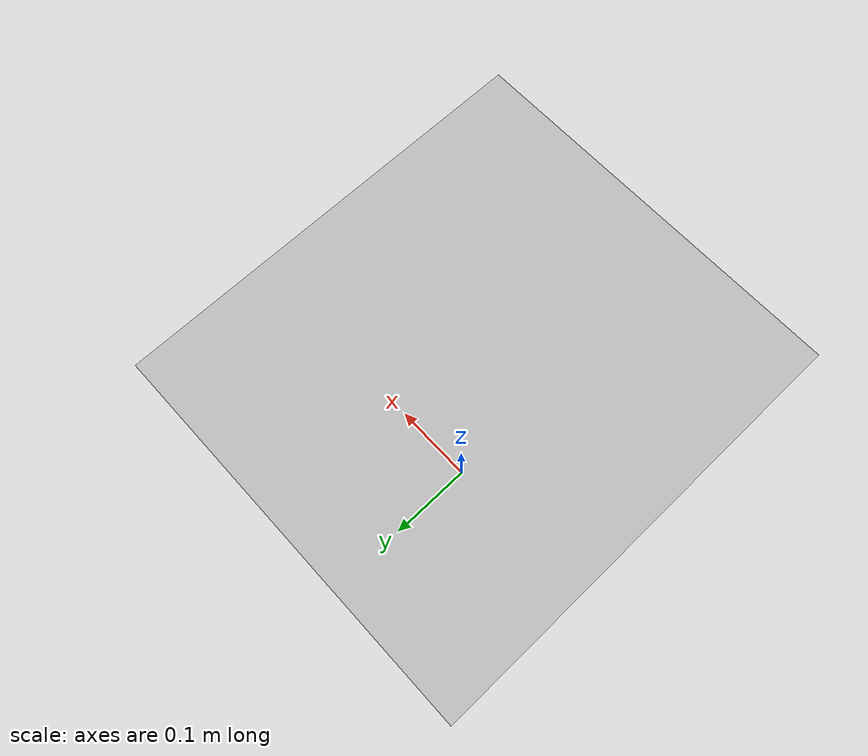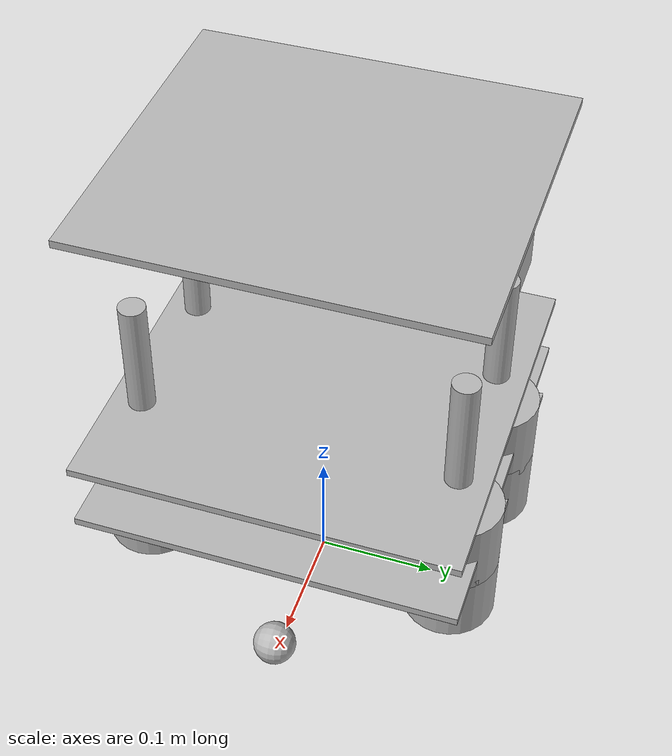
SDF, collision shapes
<?xml version='1.0'?>
<sdf version='1.6'>
  <model name='turtlebot'>
    <model name='turtlebot'>
      <link name='rack'>
        <inertial>
          <pose frame=''>0.001453 -0.000453 0.029787 0 -0 0</pose>
          <inertia>
            <ixx>0.05864</ixx>
            <ixy>0.000124</ixy>
            <ixz>0.000615</ixz>
            <iyy>0.058786</iyy>
            <iyz>1.4e-05</iyz>
            <izz>1.53244</izz>
          </inertia>
          <mass>2.234</mass>
        </inertial>
        <collision name='plate_0_collision'>
          <pose frame=''>-0.04334 0 0.084757 0 -0 0</pose>
          <geometry>
            <box>
              <size>0.233502 0.314845 0.006401</size>
            </box>
          </geometry>
        </collision>
        <visual name='plate_0_visual'>
          <pose frame=''>-0.04334 0 0.084757 0 -0 0</pose>
          <geometry>
            <mesh>
              <uri>model://turtlebot/meshes/plate_0_logo.dae</uri>
            </mesh>
          </geometry>
        </visual>
        <collision name='plate_1_collision'>
          <pose frame=''>-0.00266 0 0.141907 0 -0 0</pose>
          <geometry>
            <box>
              <size>0.314856 0.314856 0.006401</size>
            </box>
          </geometry>
        </collision>
        <visual name='plate_1_visual'>
          <pose frame=''>-0.00266 0 0.141907 0 -0 0</pose>
          <geometry>
            <mesh>
              <uri>model://turtlebot/meshes/plate_1_logo.dae</uri>
            </mesh>
          </geometry>
        </visual>
        <collision name='plate_2_collision'>
          <pose frame=''>-0.00266 0 0.199108 0 -0 0</pose>
          <geometry>
            <box>
              <size>0.314856 0.314856 0.006401</size>
            </box>
          </geometry>
        </collision>
        <visual name='plate_2_visual'>
          <pose frame=''>-0.00266 0 0.199108 0 -0 0</pose>
          <geometry>
            <mesh>
              <uri>model://turtlebot/meshes/plate_1_logo.dae</uri>
            </mesh>
          </geometry>
        </visual>
        <collision name='plate_3_collision'>
          <pose frame=''>-0.01582 0 0.405457 0 -0 0</pose>
          <geometry>
            <box>
              <size>0.288 0.315 0.006401</size>
            </box>
          </geometry>
        </collision>
        <visual name='plate_3_visual'>
          <pose frame=''>-0.01582 0 0.405457 0 -0 0</pose>
          <geometry>
            <mesh>
              <uri>model://turtlebot/meshes/plate_2_logo.dae</uri>
            </mesh>
          </geometry>
        </visual>
        <collision name='spacer_0_collision'>
          <pose frame=''>-0.00254 0.111468 0.079992 0 -0 0</pose>
          <geometry>
            <cylinder>
              <radius>0.0127</radius>
              <length>0.003175</length>
            </cylinder>
          </geometry>
        </collision>
        <visual name='spacer_0_visual'>
          <pose frame=''>-0.00254 0.111468 0.079992 0 -0 0</pose>
          <geometry>
            <mesh>
              <uri>model://turtlebot/meshes/68-02403-125_Spacer.dae</uri>
            </mesh>
          </geometry>
        </visual>
        <collision name='spacer_1_collision'>
          <pose frame=''>-0.00254 -0.111468 0.079992 0 -0 0</pose>
          <geometry>
            <cylinder>
              <radius>0.0127</radius>
              <length>0.003175</length>
            </cylinder>
          </geometry>
        </collision>
        <visual name='spacer_1_visual'>
          <pose frame=''>-0.00254 -0.111468 0.079992 0 -0 0</pose>
          <geometry>
            <mesh>
              <uri>model://turtlebot/meshes/68-02403-125_Spacer.dae</uri>
            </mesh>
          </geometry>
        </visual>
        <collision name='spacer_2_collision'>
          <pose frame=''>-0.07239 -0.111468 0.079992 0 -0 0</pose>
          <geometry>
            <cylinder>
              <radius>0.0127</radius>
              <length>0.003175</length>
            </cylinder>
          </geometry>
        </collision>
        <visual name='spacer_2_visual'>
          <pose frame=''>-0.07239 -0.111468 0.079992 0 -0 0</pose>
          <geometry>
            <mesh>
              <uri>model://turtlebot/meshes/68-02403-125_Spacer.dae</uri>
            </mesh>
          </geometry>
        </visual>
        <collision name='spacer_3_collision'>
          <pose frame=''>-0.07239 0.111468 0.079992 0 -0 0</pose>
          <geometry>
            <cylinder>
              <radius>0.0127</radius>
              <length>0.003175</length>
            </cylinder>
          </geometry>
        </collision>
        <visual name='spacer_3_visual'>
          <pose frame=''>-0.07239 0.111468 0.079992 0 -0 0</pose>
          <geometry>
            <mesh>
              <uri>model://turtlebot/meshes/68-02403-125_Spacer.dae</uri>
            </mesh>
          </geometry>
        </visual>
        <collision name='standoff_2in_0_collision'>
          <pose frame=''>0.06764 0.13142 0.08798 0 -0 0</pose>
          <geometry>
            <cylinder>
              <radius>0.0381</radius>
              <length>0.0635</length>
            </cylinder>
          </geometry>
        </collision>
        <visual name='standoff_2in_0_visual'>
          <pose frame=''>0.06764 0.13142 0.08798 0 -0 0</pose>
          <geometry>
            <mesh>
              <uri>model://turtlebot/meshes/68-04552-2000-RA_Turtlebot_M-F_Standoff.dae</uri>
            </mesh>
          </geometry>
        </visual>
        <collision name='standoff_2in_1_collision'>
          <pose frame=''>0.06764 -0.13142 0.08798 0 -0 0</pose>
          <geometry>
            <cylinder>
              <radius>0.0381</radius>
              <length>0.0635</length>
            </cylinder>
          </geometry>
        </collision>
        <visual name='standoff_2in_1_visual'>
          <pose frame=''>0.06764 -0.13142 0.08798 0 -0 0</pose>
          <geometry>
            <mesh>
              <uri>model://turtlebot/meshes/68-04552-2000-RA_Turtlebot_M-F_Standoff.dae</uri>
            </mesh>
          </geometry>
        </visual>
        <collision name='standoff_2in_2_collision'>
          <pose frame=''>-0.052832 -0.13142 0.08798 0 -0 0</pose>
          <geometry>
            <cylinder>
              <radius>0.0381</radius>
              <length>0.0635</length>
            </cylinder>
          </geometry>
        </collision>
        <visual name='standoff_2in_2_visual'>
          <pose frame=''>-0.052832 -0.13142 0.08798 0 -0 0</pose>
          <geometry>
            <mesh>
              <uri>model://turtlebot/meshes/68-04552-2000-RA_Turtlebot_M-F_Standoff.dae</uri>
            </mesh>
          </geometry>
        </visual>
        <collision name='standoff_2in_3_collision'>
          <pose frame=''>-0.052832 0.13142 0.08798 0 -0 0</pose>
          <geometry>
            <cylinder>
              <radius>0.0381</radius>
              <length>0.0635</length>
            </cylinder>
          </geometry>
        </collision>
        <visual name='standoff_2in_3_visual'>
          <pose frame=''>-0.052832 0.13142 0.08798 0 -0 0</pose>
          <geometry>
            <mesh>
              <uri>model://turtlebot/meshes/68-04552-2000-RA_Turtlebot_M-F_Standoff.dae</uri>
            </mesh>
          </geometry>
        </visual>
        <collision name='standoff_2in_4_collision'>
          <pose frame=''>0.06764 0.13142 0.14513 0 -0 0</pose>
          <geometry>
            <cylinder>
              <radius>0.0381</radius>
              <length>0.0635</length>
            </cylinder>
          </geometry>
        </collision>
        <visual name='standoff_2in_4_visual'>
          <pose frame=''>0.06764 0.13142 0.14513 0 -0 0</pose>
          <geometry>
            <mesh>
              <uri>model://turtlebot/meshes/68-04552-2000-RA_Turtlebot_M-F_Standoff.dae</uri>
            </mesh>
          </geometry>
        </visual>
        <collision name='standoff_2in_5_collision'>
          <pose frame=''>0.06764 -0.13142 0.14513 0 -0 0</pose>
          <geometry>
            <cylinder>
              <radius>0.0381</radius>
              <length>0.0635</length>
            </cylinder>
          </geometry>
        </collision>
        <visual name='standoff_2in_5_visual'>
          <pose frame=''>0.06764 -0.13142 0.14513 0 -0 0</pose>
          <geometry>
            <mesh>
              <uri>model://turtlebot/meshes/68-04552-2000-RA_Turtlebot_M-F_Standoff.dae</uri>
            </mesh>
          </geometry>
        </visual>
        <collision name='standoff_2in_6_collision'>
          <pose frame=''>-0.052832 -0.13142 0.14513 0 -0 0</pose>
          <geometry>
            <cylinder>
              <radius>0.0381</radius>
              <length>0.0635</length>
            </cylinder>
          </geometry>
        </collision>
        <visual name='standoff_2in_6_visual'>
          <pose frame=''>-0.052832 -0.13142 0.14513 0 -0 0</pose>
          <geometry>
            <mesh>
              <uri>model://turtlebot/meshes/68-04552-2000-RA_Turtlebot_M-F_Standoff.dae</uri>
            </mesh>
          </geometry>
        </visual>
        <collision name='standoff_2in_7_collision'>
          <pose frame=''>-0.052832 0.13142 0.14513 0 -0 0</pose>
          <geometry>
            <cylinder>
              <radius>0.0381</radius>
              <length>0.0635</length>
            </cylinder>
          </geometry>
        </collision>
        <visual name='standoff_2in_7_visual'>
          <pose frame=''>-0.052832 0.13142 0.14513 0 -0 0</pose>
          <geometry>
            <mesh>
              <uri>model://turtlebot/meshes/68-04552-2000-RA_Turtlebot_M-F_Standoff.dae</uri>
            </mesh>
          </geometry>
        </visual>
        <collision name='standoff_8in_0_collision'>
          <pose frame=''>0.06764 0.13142 0.20228 0 -0 0</pose>
          <geometry>
            <cylinder>
              <radius>0.011113</radius>
              <length>0.2032</length>
            </cylinder>
          </geometry>
        </collision>
        <visual name='standoff_8in_0_visual'>
          <pose frame=''>0.06764 0.13142 0.20228 0 -0 0</pose>
          <geometry>
            <mesh>
              <uri>model://turtlebot/meshes/68-02421-8000-RA_Turtlebot_F-F_Standoff.dae</uri>
            </mesh>
          </geometry>
        </visual>
        <collision name='standoff_8in_1_collision'>
          <pose frame=''>0.06764 -0.13142 0.20228 0 -0 0</pose>
          <geometry>
            <cylinder>
              <radius>0.011113</radius>
              <length>0.2032</length>
            </cylinder>
          </geometry>
        </collision>
        <visual name='standoff_8in_1_visual'>
          <pose frame=''>0.06764 -0.13142 0.20228 0 -0 0</pose>
          <geometry>
            <mesh>
              <uri>model://turtlebot/meshes/68-02421-8000-RA_Turtlebot_F-F_Standoff.dae</uri>
            </mesh>
          </geometry>
        </visual>
        <collision name='standoff_8in_2_collision'>
          <pose frame=''>-0.052832 -0.13142 0.20228 0 -0 0</pose>
          <geometry>
            <cylinder>
              <radius>0.011113</radius>
              <length>0.2032</length>
            </cylinder>
          </geometry>
        </collision>
        <visual name='standoff_8in_2_visual'>
          <pose frame=''>-0.052832 -0.13142 0.20228 0 -0 0</pose>
          <geometry>
            <mesh>
              <uri>model://turtlebot/meshes/68-02421-8000-RA_Turtlebot_F-F_Standoff.dae</uri>
            </mesh>
          </geometry>
        </visual>
        <collision name='standoff_8in_3_collision'>
          <pose frame=''>-0.052832 0.13142 0.20228 0 -0 0</pose>
          <geometry>
            <cylinder>
              <radius>0.011113</radius>
              <length>0.2032</length>
            </cylinder>
          </geometry>
        </collision>
        <visual name='standoff_8in_3_visual'>
          <pose frame=''>-0.052832 0.13142 0.20228 0 -0 0</pose>
          <geometry>
            <mesh>
              <uri>model://turtlebot/meshes/68-02421-8000-RA_Turtlebot_F-F_Standoff.dae</uri>
            </mesh>
          </geometry>
        </visual>
        <collision name='standoff_kinect_0_collision'>
          <pose frame=''>-0.105098 0.098 0.202308 0 -0 0</pose>
          <geometry>
            <cylinder>
              <radius>0.001111</radius>
              <length>0.008585</length>
            </cylinder>
          </geometry>
        </collision>
        <visual name='standoff_kinect_0_visual'>
          <pose frame=''>-0.105098 0.098 0.202308 0 -0 0</pose>
          <geometry>
            <mesh>
              <uri>model://turtlebot/meshes/68-04556-RA_Kinect_Standoff_Assy.dae</uri>
            </mesh>
          </geometry>
        </visual>
        <collision name='standoff_kinect_1_collision'>
          <pose frame=''>-0.105098 -0.098 0.202308 0 -0 0</pose>
          <geometry>
            <cylinder>
              <radius>0.001111</radius>
              <length>0.008585</length>
            </cylinder>
          </geometry>
        </collision>
        <visual name='standoff_kinect_1_visual'>
          <pose frame=''>-0.105098 -0.098 0.202308 0 -0 0</pose>
          <geometry>
            <mesh>
              <uri>model://turtlebot/meshes/68-04556-RA_Kinect_Standoff_Assy.dae</uri>
            </mesh>
          </geometry>
        </visual>
        <sensor name='laser' type='ray'>
          <pose frame=''>-0.065 0 0.092 0 -0 0</pose>
          <ray>
            <scan>
              <horizontal>
                <samples>180</samples>
                <resolution>1</resolution>
                <min_angle>-2.26893</min_angle>
                <max_angle>2.26893</max_angle>
              </horizontal>
            </scan>
            <range>
              <min>0.08</min>
              <max>10</max>
              <resolution>0.01</resolution>
            </range>
          </ray>
          <update_rate>20</update_rate>
        </sensor>
      </link>
      <link name='create::base'>
        <inertial>
          <pose frame=''>0.001453 -0.000453 0.029787 0 -0 0</pose>
          <inertia>
            <ixx>0.05864</ixx>
            <ixy>0.000124</ixy>
            <ixz>0.000615</ixz>
            <iyy>0.058786</iyy>
            <iyz>1.4e-05</iyz>
            <izz>1.53244</izz>
          </inertia>
          <mass>2.234</mass>
        </inertial>
        <collision name='base_collision'>
          <pose frame=''>0 0 0.0478 0 -0 0</pose>
          <geometry>
            <cylinder>
              <radius>0.016495</radius>
              <length>0.061163</length>
            </cylinder>
          </geometry>
        </collision>
        <visual name='base_visual'>
          <pose frame=''>0 0 0.0478 0 -0 0</pose>
          <geometry>
            <mesh>
              <uri>model://create/meshes/create_body.dae</uri>
            </mesh>
          </geometry>
        </visual>
        <collision name='front_wheel_collision'>
          <pose frame=''>0.13 0 0.017 -0 1.5707 1.5707</pose>
          <geometry>
            <sphere>
              <radius>0.018</radius>
            </sphere>
          </geometry>
          <surface>
            <friction>
              <ode>
                <mu>0</mu>
                <mu2>0</mu2>
                <fdir1>0 0 0</fdir1>
                <slip1>0</slip1>
                <slip2>0</slip2>
              </ode>
            </friction>
          </surface>
        </collision>
        <visual name='front_wheel_visual'>
          <pose frame=''>0.13 0 0.017 -0 1.5707 1.5707</pose>
          <geometry>
            <sphere>
              <radius>0.009</radius>
            </sphere>
          </geometry>
        </visual>
        <collision name='rear_wheel_collision'>
          <pose frame=''>-0.13 0 0.017 -0 1.5707 1.5707</pose>
          <geometry>
            <sphere>
              <radius>0.015</radius>
            </sphere>
          </geometry>
          <surface>
            <friction>
              <ode>
                <mu>0</mu>
                <mu2>0</mu2>
                <fdir1>0 0 0</fdir1>
                <slip1>0</slip1>
                <slip2>0</slip2>
              </ode>
            </friction>
          </surface>
        </collision>
        <visual name='rear_wheel_visual'>
          <pose frame=''>-0.13 0 0.017 -0 1.5707 1.5707</pose>
          <geometry>
            <sphere>
              <radius>0.0075</radius>
            </sphere>
          </geometry>
        </visual>
        <sensor name='left_cliff_sensor' type='ray'>
          <pose frame=''>0.07 0.14 0.027 0 1.57079 0</pose>
          <ray>
            <scan>
              <horizontal>
                <samples>1</samples>
                <resolution>1</resolution>
                <min_angle>0</min_angle>
                <max_angle>0</max_angle>
              </horizontal>
            </scan>
            <range>
              <min>0.01</min>
              <max>0.04</max>
              <resolution>0.1</resolution>
            </range>
          </ray>
        </sensor>
        <sensor name='leftfront_cliff_sensor' type='ray'>
          <pose frame=''>0.15 0.04 0.027 0 1.57079 0</pose>
          <ray>
            <scan>
              <horizontal>
                <samples>1</samples>
                <resolution>1</resolution>
                <min_angle>0</min_angle>
                <max_angle>0</max_angle>
              </horizontal>
            </scan>
            <range>
              <min>0.01</min>
              <max>0.04</max>
              <resolution>0.1</resolution>
            </range>
          </ray>
        </sensor>
        <sensor name='right_cliff_sensor' type='ray'>
          <pose frame=''>0.07 -0.14 0.027 0 1.57079 0</pose>
          <ray>
            <scan>
              <horizontal>
                <samples>1</samples>
                <resolution>1</resolution>
                <min_angle>0</min_angle>
                <max_angle>0</max_angle>
              </horizontal>
            </scan>
            <range>
              <min>0.01</min>
              <max>0.04</max>
              <resolution>0.1</resolution>
            </range>
          </ray>
        </sensor>
        <sensor name='rightfront_cliff_sensor' type='ray'>
          <pose frame=''>0.15 -0.04 0.027 0 1.57079 0</pose>
          <ray>
            <scan>
              <horizontal>
                <samples>1</samples>
                <resolution>1</resolution>
                <min_angle>0</min_angle>
                <max_angle>0</max_angle>
              </horizontal>
            </scan>
            <range>
              <min>0.01</min>
              <max>0.04</max>
              <resolution>0.1</resolution>
            </range>
          </ray>
        </sensor>
        <sensor name='wall_sensor' type='ray'>
          <pose frame=''>0.09 -0.12 0.059 0 0 -1</pose>
          <ray>
            <scan>
              <horizontal>
                <samples>1</samples>
                <resolution>1</resolution>
                <min_angle>0</min_angle>
                <max_angle>0</max_angle>
              </horizontal>
            </scan>
            <range>
              <min>0.016</min>
              <max>0.04</max>
              <resolution>0.1</resolution>
            </range>
          </ray>
        </sensor>
        <pose frame=''>0 0 0 0 -0 0</pose>
      </link>
      <link name='create::left_wheel'>
        <pose frame=''>0 0.13 0.032 0 -0 0</pose>
        <inertial>
          <inertia>
            <ixx>0.001</ixx>
            <ixy>0</ixy>
            <ixz>0</ixz>
            <iyy>0.001</iyy>
            <iyz>0</iyz>
            <izz>0.001</izz>
          </inertia>
          <mass>0.01</mass>
        </inertial>
        <collision name='collision'>
          <pose frame=''>0 0 0 -0 1.5707 1.5707</pose>
          <geometry>
            <cylinder>
              <radius>0.033</radius>
              <length>0.023</length>
            </cylinder>
          </geometry>
          <surface>
            <friction>
              <ode>
                <mu>10</mu>
                <mu2>10</mu2>
                <fdir1>0 0 0</fdir1>
                <slip1>0</slip1>
                <slip2>0</slip2>
              </ode>
            </friction>
          </surface>
        </collision>
        <visual name='visual'>
          <pose frame=''>0 0 0 -0 1.5707 1.5707</pose>
          <geometry>
            <cylinder>
              <radius>0.033</radius>
              <length>0.023</length>
            </cylinder>
          </geometry>
        </visual>
      </link>
      <link name='create::right_wheel'>
        <pose frame=''>0 -0.13 0.032 0 -0 0</pose>
        <inertial>
          <inertia>
            <ixx>0.001</ixx>
            <ixy>0</ixy>
            <ixz>0</ixz>
            <iyy>0.001</iyy>
            <iyz>0</iyz>
            <izz>0.001</izz>
          </inertia>
          <mass>0.01</mass>
        </inertial>
        <collision name='collision'>
          <pose frame=''>0 0 0 -0 1.5707 1.5707</pose>
          <geometry>
            <cylinder>
              <radius>0.033</radius>
              <length>0.023</length>
            </cylinder>
          </geometry>
          <surface>
            <friction>
              <ode>
                <mu>10</mu>
                <mu2>10</mu2>
                <fdir1>0 0 0</fdir1>
                <slip1>0</slip1>
                <slip2>0</slip2>
              </ode>
            </friction>
          </surface>
        </collision>
        <visual name='visual'>
          <pose frame=''>0 0 0 -0 1.5707 1.5707</pose>
          <geometry>
            <cylinder>
              <radius>0.033</radius>
              <length>0.023</length>
            </cylinder>
          </geometry>
        </visual>
      </link>
      <joint name='create::left_wheel' type='revolute'>
        <parent>create::base</parent>
        <child>create::left_wheel</child>
        <axis>
          <xyz>0 1 0</xyz>
          <use_parent_model_frame>1</use_parent_model_frame>
          <limit>
            <lower>-1e+16</lower>
            <upper>1e+16</upper>
          </limit>
        </axis>
      </joint>
      <joint name='create::right_wheel' type='revolute'>
        <parent>create::base</parent>
        <child>create::right_wheel</child>
        <axis>
          <xyz>0 1 0</xyz>
          <use_parent_model_frame>1</use_parent_model_frame>
          <limit>
            <lower>-1e+16</lower>
            <upper>1e+16</upper>
          </limit>
        </axis>
      </joint>
      <link name='kinect::link'>
        <inertial>
          <mass>0.1</mass>
        </inertial>
        <collision name='collision'>
          <geometry>
            <box>
              <size>0.073 0.276 0.072</size>
            </box>
          </geometry>
        </collision>
        <visual name='visual'>
          <geometry>
            <mesh>
              <uri>model://kinect/meshes/kinect.dae</uri>
            </mesh>
          </geometry>
        </visual>
        <sensor name='camera' type='depth'>
          <update_rate>20</update_rate>
          <camera name='__default__'>
            <horizontal_fov>1.0472</horizontal_fov>
            <image>
              <width>640</width>
              <height>480</height>
              <format>R8G8B8</format>
            </image>
            <clip>
              <near>0.05</near>
              <far>3</far>
            </clip>
          </camera>
        </sensor>
        <pose frame=''>-0.087098 0 0.303857 0 -0 0</pose>
      </link>
      <joint name='create_rack' type='revolute'>
        <parent>create::base</parent>
        <child>rack</child>
        <axis>
          <xyz>0 0 1</xyz>
          <limit>
            <lower>0</lower>
            <upper>0</upper>
          </limit>
          <use_parent_model_frame>1</use_parent_model_frame>
        </axis>
      </joint>
      <joint name='kinect_rack' type='revolute'>
        <parent>kinect::link</parent>
        <child>rack</child>
        <axis>
          <xyz>0 0 1</xyz>
          <limit>
            <lower>0</lower>
            <upper>0</upper>
          </limit>
          <use_parent_model_frame>1</use_parent_model_frame>
        </axis>
      </joint>
      <pose frame=''>0 0 0 0 -0 0</pose>
    </model>
    <static>0</static>
    <allow_auto_disable>1</allow_auto_disable>
  </model>
</sdf>
